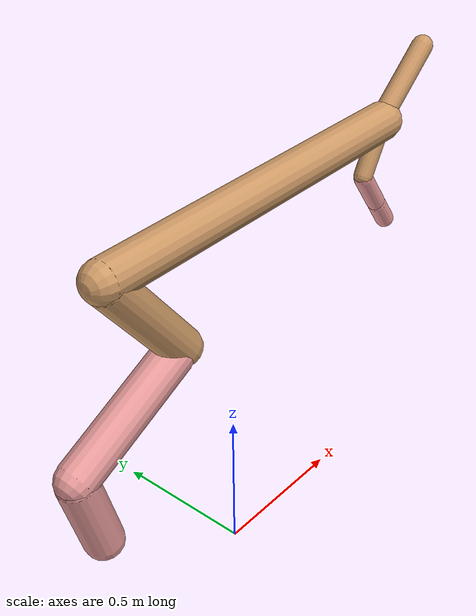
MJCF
<mujoco model="cheetah">
  <compiler angle="radian" coordinate="local" inertiafromgeom="true" settotalmass="14" />
  <default>
    <joint armature=".1" damping=".01" limited="true" solimplimit="0 .8 .03" solreflimit=".02 1" stiffness="8" />
    <geom conaffinity="0" condim="3" contype="1" friction="0.8 .1 .1" rgba="0.8 0.6 .4 1" solimp="0.0 0.8 0.01" solref="0.02 1" />
    <motor ctrllimited="true" ctrlrange="-1 1" />
  </default>
  <size nstack="300000" nuser_geom="1" />
  <option gravity="0 0 -9.81" timestep="0.01" />
  <worldbody>
    <body name="torso" pos="0.0 0.0 1.3003960000997439">
      <joint armature="0" axis="1 0 0" damping="0" limited="false" name="ignorex" pos="0 0 0" stiffness="0" type="slide" />
      <joint armature="0" axis="0 0 1" damping="0" limited="false" name="ignorez" pos="0 0 0" stiffness="0" type="slide" />
      <joint armature="0" axis="0 1 0" damping="0" limited="false" name="ignorey" pos="0 0 0" stiffness="0" type="hinge" />
      <geom fromto="-0.5 0.0 0.0 0.7749142615576364 0.0 0.0" name="torso" size="0.06583969281585318" type="capsule" />
      <geom axisangle="0 1 0 .87" name="head" pos="0.8749142615576363 0.0 0.1" size="0.036294244679969945 0.15" type="capsule" />

      <body name="bthigh" pos="-.5 0 0">
        <joint axis="0 1 0" damping="6" name="bthigh" pos="0 0 0" range="-.52 1.05" stiffness="240" type="hinge" />
        <geom axisangle="0 1 0 -3.8" name="bthigh" pos="0.1449829201649402 0.0 -0.18847779621442223" size="0.06410066797715855 0.21877747458852786" type="capsule" />
        <body name="bshin" pos="0.24996584032988034 0.0 -0.36695559242884446">
          <joint axis="0 1 0" damping="4.5" name="bshin" pos="0 0 0" range="-.785 .785" stiffness="180" type="hinge" />
          <geom axisangle="0 1 0 -2.03" name="bshin" pos="-0.20826404760891518 0.0 -0.10413202380445759" rgba="0.9 0.6 0.6 1" size="0.06410066797715855 0.22632152543640813" type="capsule" />
          <body name="bfoot" pos="-0.41652809521783035 0.0 -0.20826404760891518">
            <joint axis="0 1 0" damping="3" name="bfoot" pos="0 0 0" range="-.4 .785" stiffness="120" type="hinge" />
            <geom axisangle="0 1 0 -.27" name="bfoot" pos="0.044131771983509295 0.0 -0.14269272941334674" rgba="0.9 0.6 0.6 1" size="0.06410066797715855 0.1418281559401491" type="capsule" />
            <inertial mass="10" />
          </body>
        </body>
      </body>
      <body name="fthigh" pos="0.7749142615576363 0.0 0.0">
        <joint axis="0 1 0" damping="4.5" name="fthigh" pos="0 0 0" range="-1.5 0.8" stiffness="180" type="hinge" />
        <geom axisangle="0 1 0 .52" name="fthigh" pos="-0.04989554608158897 0.0 -0.0855352218541525" size="0.0322 0.0931" type="capsule" />
        <body name="fshin" pos="-0.09979109216317794 0.0 -0.171070443708305">
          <joint axis="0 1 0" damping="3" name="fshin" pos="0 0 0" range="-1.2 1.1" stiffness="120" type="hinge" />
          <geom axisangle="0 1 0 -.6" name="fshin" pos="0.046381400387749405 0.0 -0.06422040053688378" rgba="0.9 0.6 0.6 1" size="0.0322 0.07419999999999999" type="capsule" />
          <body name="ffoot" pos="0.09276280077549881 0.0 -0.12844080107376757">
            <joint axis="0 1 0" damping="1.5" name="ffoot" pos="0 0 0" range="-3.1 -0.3" stiffness="60" type="hinge" />
            <geom axisangle="0 1 0 -.6" name="ffoot" pos="0.033644090582416526 0.0 -0.05233525201709238" rgba="0.9 0.6 0.6 1" size="0.0322 0.049" type="capsule" />
            <inertial mass="10" />
          </body>
        </body>
      </body>
    </body>
  </worldbody>
  <actuator>
    <motor gear="120" joint="bthigh" name="bthigh" />
    <motor gear="90" joint="bshin" name="bshin" />
    <motor gear="60" joint="bfoot" name="bfoot" />
    <motor gear="120" joint="fthigh" name="fthigh" />
    <motor gear="60" joint="fshin" name="fshin" />
    <motor gear="30" joint="ffoot" name="ffoot" />
  </actuator>
</mujoco>
